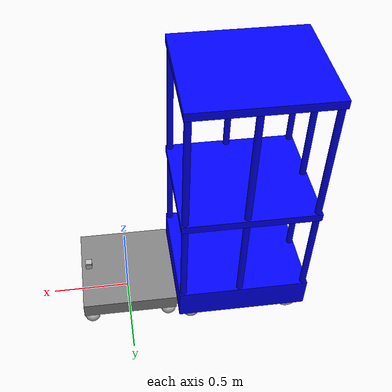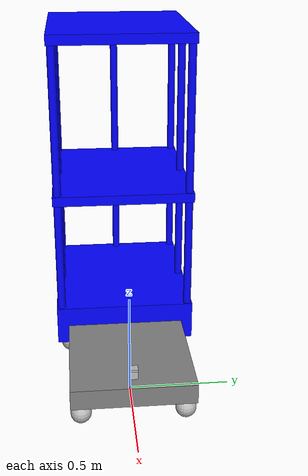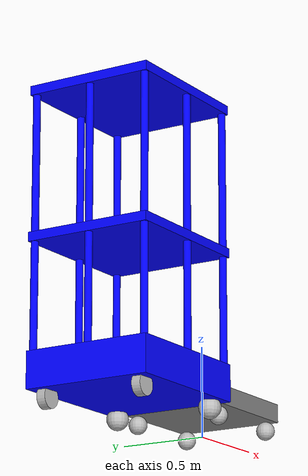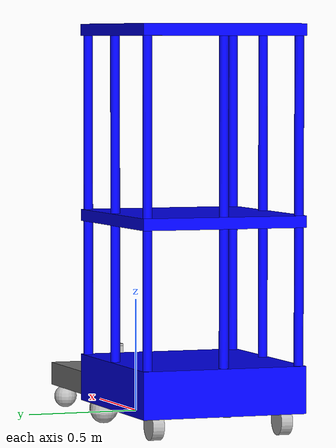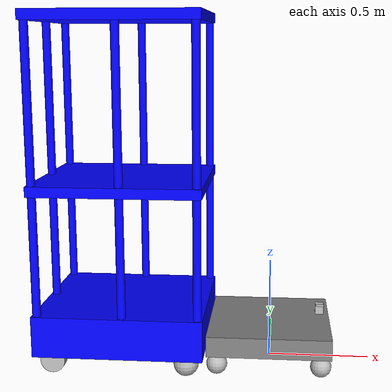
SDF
<?xml version='1.0'?>
<sdf version='1.5'>

  <model name='ropod_mobidik'>

   <include>
      <uri>model://mobidik</uri>
      <pose>-1.045 0 0 0 0 0</pose>
    </include>

   <include>
      <uri>model://ropod</uri>
    </include>

    <joint name="ropod_mobidik_joint" type="fixed">
      <child>ropod::base_link</child>
      <parent>mobidik::base_link</parent>
    </joint>

  </model>

  </sdf>

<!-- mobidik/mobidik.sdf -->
<sdf version='1.5'>

  <model name='mobidik'>

   <link name='base_link'>

      <inertial>
        <mass>4*50.0</mass>
        <inertia> <!-- inertias are tricky to compute -->
          <!-- http://gazebosim.org/tutorials?tut=inertia&cat=build_robot -->
          <ixx>0.083*4*50.0*1.01</ixx>       <!-- for a box: ixx = 0.083 * mass * (y*y + z*z) -->
          <ixy>0.0</ixy>         <!-- for a box: ixy = 0 -->
          <ixz>0.0</ixz>         <!-- for a box: ixz = 0 -->
          <iyy>0.083*4*50.0*1.01</iyy>       <!-- for a box: iyy = 0.083 * mass * (x*x + z*z) -->
          <iyz>0.0</iyz>         <!-- for a box: iyz = 0 -->
          <izz>0.083*4*50.0*2</izz>       <!-- for a box: izz = 0.083 * mass * (x*x + y*y) -->
        </inertia>
      </inertial>

      <collision name='base_link_collision'>
        <pose>0.325 0 0.195 0 0 0</pose>
        <geometry>
          <box>
            <size>0.82 0.72 0.2</size>
          </box>
        </geometry>
      </collision>
      <visual name='base_link_visual'>
		<pose>0.325 0 0.195 0 0 0</pose>
        <geometry>
          <box>
            <size>0.82 0.72 0.2</size>
          </box>
        </geometry>
	     <material>
			<ambient>0 0 1 1</ambient>
			<diffuse>0 0 1 1</diffuse>
			<specular>0.1 0.1 0.1 1</specular>
			<emissive>0 0 0 0</emissive>
		</material>
      </visual>

<!-- ********************** Bars ***************************** -->

      <visual name='base_barv1_visual'>
        <pose>-0.06 0.335 0.95 0 0 0</pose>
          <geometry>
            <cylinder>
              <radius>.02</radius>
              <length>1.5</length>
            </cylinder>
          </geometry>
	     <material>
			<ambient>0 0 1 1</ambient>
			<diffuse>0 0 1 1</diffuse>
			<specular>0.1 0.1 0.1 1</specular>
			<emissive>0 0 0 0</emissive>
		</material>
      </visual>

      <visual name='base_barv2_visual'>
        <pose>-0.06 -0.335 0.95 0 0 0</pose>
          <geometry>
            <cylinder>
              <radius>.02</radius>
              <length>1.5</length>
            </cylinder>
          </geometry>
	     <material>
			<ambient>0 0 1 1</ambient>
			<diffuse>0 0 1 1</diffuse>
			<specular>0.1 0.1 0.1 1</specular>
			<emissive>0 0 0 0</emissive>
		</material>
      </visual>

      <visual name='base_barv1_2_visual'>
        <pose>-0.06 0.0 0.95 0 0 0</pose>
          <geometry>
            <cylinder>
              <radius>.02</radius>
              <length>1.5</length>
            </cylinder>
          </geometry>
	     <material>
			<ambient>0 0 1 1</ambient>
			<diffuse>0 0 1 1</diffuse>
			<specular>0.1 0.1 0.1 1</specular>
			<emissive>0 0 0 0</emissive>
		</material>
      </visual>

      <visual name='base_barv3_visual'>
        <pose>0.71 0.335 0.95 0 0 0</pose>
          <geometry>
            <cylinder>
              <radius>.02</radius>
              <length>1.5</length>
            </cylinder>
          </geometry>
	     <material>
			<ambient>0 0 1 1</ambient>
			<diffuse>0 0 1 1</diffuse>
			<specular>0.1 0.1 0.1 1</specular>
			<emissive>0 0 0 0</emissive>
		</material>
      </visual>

      <visual name='base_barv4_visual'>
        <pose>0.71 -0.335 0.95 0 0 0</pose>
          <geometry>
            <cylinder>
              <radius>.02</radius>
              <length>1.5</length>
            </cylinder>
          </geometry>
	     <material>
			<ambient>0 0 1 1</ambient>
			<diffuse>0 0 1 1</diffuse>
			<specular>0.1 0.1 0.1 1</specular>
			<emissive>0 0 0 0</emissive>
		</material>
      </visual>

      <visual name='base_barv2_4_visual'>
        <pose>0.35 -0.335 0.95 0 0 0</pose>
          <geometry>
            <cylinder>
              <radius>.02</radius>
              <length>1.5</length>
            </cylinder>
          </geometry>
	     <material>
			<ambient>0 0 1 1</ambient>
			<diffuse>0 0 1 1</diffuse>
			<specular>0.1 0.1 0.1 1</specular>
			<emissive>0 0 0 0</emissive>
		</material>
      </visual>

      <visual name='base_barv1_4_visual'>
        <pose>0.35 0.335 0.95 0 0 0</pose>
          <geometry>
            <cylinder>
              <radius>.02</radius>
              <length>1.5</length>
            </cylinder>
          </geometry>
	     <material>
			<ambient>0 0 1 1</ambient>
			<diffuse>0 0 1 1</diffuse>
			<specular>0.1 0.1 0.1 1</specular>
			<emissive>0 0 0 0</emissive>
		</material>
      </visual>

<!-- ********************** trays ***************************** -->
      <visual name='tray1_visual'>
		<pose>0.325 0 0.9 0 0 0</pose>
        <geometry>
          <box>
            <size>0.82 0.72 0.05</size>
          </box>
        </geometry>
	     <material>
			<ambient>0 0 1 1</ambient>
			<diffuse>0 0 1 1</diffuse>
			<specular>0.1 0.1 0.1 1</specular>
			<emissive>0 0 0 0</emissive>
		</material>
      </visual>
      <visual name='tray2_visual'>
		<pose>0.325 0 1.7 0 0 0</pose>
        <geometry>
          <box>
            <size>0.82 0.72 0.05</size>
          </box>
        </geometry>
	     <material>
			<ambient>0 0 1 1</ambient>
			<diffuse>0 0 1 1</diffuse>
			<specular>0.1 0.1 0.1 1</specular>
			<emissive>0 0 0 0</emissive>
		</material>
      </visual>

<!-- ********************** Casters ***************************** -->

		<collision name='caster_top_left_collision'>
            <pose>0.65 0.285 0.06 0 0 0</pose>
            <geometry>
                <sphere>
                <radius>.06</radius>
              </sphere>
            </geometry>

            <surface>
              <friction>
                <ode>
                  <mu>0</mu>
                  <mu2>0</mu2>
                  <slip1>1.0</slip1>
                  <slip2>1.0</slip2>
                </ode>
              </friction>
            </surface>
          </collision>

          <visual name='caster_top_left_visual'>
			<pose>0.65 0.285 0.06 0 0 0</pose>
            <geometry>
                <sphere>
                <radius>.06</radius>
              </sphere>
            </geometry>

          </visual>

		<collision name='caster_top_right_collision'>
            <pose>0.65 -0.285 0.06 0 0 0</pose>
            <geometry>
                <sphere>
                <radius>.06</radius>
              </sphere>
            </geometry>

            <surface>
              <friction>
                <ode>
                  <mu>0</mu>
                  <mu2>0</mu2>
                  <slip1>1.0</slip1>
                  <slip2>1.0</slip2>
                </ode>
              </friction>
            </surface>
          </collision>

          <visual name='caster_top_right_visual'>
			<pose>0.65 -0.285 0.06 0 0 0</pose>
            <geometry>
                <sphere>
                <radius>.06</radius>
              </sphere>
            </geometry>

          </visual>

     <gravity>1</gravity>
      <self_collide>0</self_collide>

      </link>

<!-- ********************** Wheels ***************************** -->
      <link name="left_rear_wheel">
        <pose>0 0.285 0.06 0 1.5707 1.5707</pose>
        <collision name="collision">
          <geometry>
            <cylinder>
              <radius>.06</radius>
              <length>.05</length>
            </cylinder>
          </geometry>
	  <surface>
	  <friction>
	    <ode>
              <mu>0.0</mu>
              <mu2>0.0</mu2>
              <slip1>1.0</slip1>
              <slip2>1.0</slip2>
	    </ode>
	  </friction>
	  <contact>
	    <ode><min_depth>0.003</min_depth></ode>
	  </contact>
	</surface>
        </collision>
        <visual name="visual">
          <geometry>
            <cylinder>
              <radius>.06</radius>
              <length>.05</length>
            </cylinder>
          </geometry>
        </visual>
      </link>

      <link name="right_rear_wheel">
        <pose>0 -0.285 0.06 0 1.5707 1.5707</pose>
        <collision name="collision">
          <geometry>
            <cylinder>
              <radius>.06</radius>
              <length>.05</length>
            </cylinder>
          </geometry>
	  <surface>
	    <friction>
	      <ode>
              <mu>0.0</mu>
              <mu2>0.0</mu2>
              <slip1>1.0</slip1>
              <slip2>1.0</slip2>
	      </ode>
	    </friction>
	    <contact>
	      <ode><min_depth>0.003</min_depth></ode>
	    </contact>
	  </surface>
        </collision>
        <visual name="visual">
          <geometry>
            <cylinder>
              <radius>.06</radius>
              <length>.05</length>
            </cylinder>
          </geometry>
        </visual>
      </link>

       <joint type="revolute" name="left_wheel_hinge">
        <pose>0 0 -0.085 0 0 0</pose>
        <child>left_rear_wheel</child>
        <parent>base_link</parent>
        <axis>
          <xyz>0 0 1</xyz>
        </axis>
      </joint>

      <joint type="revolute" name="right_wheel_hinge">
        <pose>0 0 -0.085 0 0 0</pose>
        <child>right_rear_wheel</child>
        <parent>base_link</parent>
        <axis>
          <xyz>0 0 1</xyz>
        </axis>
      </joint>

<!-- ********************** Other parameters ***************************** -->

   <plugin name="Odometry_Plugin" filename="libOdometry_Plugin.so">
       <updateRate>30.0</updateRate>
       <veltopicName>/load/cmd_vel</veltopicName>
       <odomtopicName>/load/odom_incomplete</odomtopicName>
       <robotBaseFrame>/load/base_link</robotBaseFrame>
       <odomFrame>/load/odom</odomFrame>
   </plugin>

  </model>

  </sdf>

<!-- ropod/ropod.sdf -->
<sdf version='1.5'>

  <model name='ropod'>

   <link name='base_link'>

      <inertial>
        <mass>0.01</mass>
        <inertia> <!-- inertias are tricky to compute -->
          <!-- http://gazebosim.org/tutorials?tut=inertia&cat=build_robot -->
          <ixx>0.083*00.0*1.01</ixx>       <!-- for a box: ixx = 0.083 * mass * (y*y + z*z) -->
          <ixy>0.0</ixy>         <!-- for a box: ixy = 0 -->
          <ixz>0.0</ixz>         <!-- for a box: ixz = 0 -->
          <iyy>0.083*00.01*1.01</iyy>       <!-- for a box: iyy = 0.083 * mass * (x*x + z*z) -->
          <iyz>0.0</iyz>         <!-- for a box: iyz = 0 -->
          <izz>0.083*00.01*2</izz>       <!-- for a box: izz = 0.083 * mass * (x*x + y*y) -->
        </inertia>
      </inertial>

      <collision name='base_link_collision'>
        <pose>0 0 0.15 0 0 0</pose>
        <geometry>
          <box>
            <size>0.6 0.6 0.1</size>
          </box>
        </geometry>
      </collision>
      <visual name='base_link_visual'>
        <pose>0 0 0.15 0 0 0</pose>
        <geometry>
          <box>
            <size>0.6 0.6 0.1</size>
          </box>
        </geometry>
	<material>
		<ambient>0.5 0.5 0.5 1</ambient>
		<diffuse>0.5 0.5 0.5 1</diffuse>
		<specular>0.1 0.1 0.1 1</specular>
		<emissive>0 0 0 0</emissive>
	</material>
      </visual>

      <collision name='base_link_collision_left_rear_wheel'>
        <pose>-0.25 0.25 0.05 0 -0 0</pose>
        <geometry>
          <sphere>
            <radius>0.05</radius>
          </sphere>
        </geometry>
        <surface>
          <contact>
            <ode>
              <kp>1e+09</kp>
              <kd>1</kd>
            </ode>
          </contact>
          <friction>
            <ode>
              <mu>5</mu>
              <mu2>5</mu2>
            </ode>
          </friction>
        </surface>
      </collision>
      <visual name='base_link_visual_left_rear_wheel'>
         <pose>-0.25 0.25 0.05 0 -0 0</pose>
        <geometry>
          <sphere>
            <radius>0.05</radius>
          </sphere>
        </geometry>
      </visual>

      <collision name='base_link_collision_left_top_wheel'>
        <pose>0.25 0.25 0.05 0 -0 0</pose>
        <geometry>
          <sphere>
            <radius>0.05</radius>
          </sphere>
        </geometry>
        <surface>
          <contact>
            <ode>
              <kp>1e+09</kp>
              <kd>1</kd>
            </ode>
          </contact>
          <friction>
            <ode>
              <mu>5</mu>
              <mu2>5</mu2>
            </ode>
          </friction>
        </surface>
      </collision>
      <visual name='base_link_visual_left_top_wheel'>
         <pose>0.25 0.25 0.05 0 -0 0</pose>
        <geometry>
          <sphere>
            <radius>0.05</radius>
          </sphere>
        </geometry>
      </visual>

      <collision name='base_link_collision_right_top_wheel'>
        <pose>0.25 -0.25 0.05 0 -0 0</pose>
        <geometry>
          <sphere>
            <radius>0.05</radius>
          </sphere>
        </geometry>
        <surface>
          <contact>
            <ode>
              <kp>1e+09</kp>
              <kd>1</kd>
            </ode>
          </contact>
          <friction>
            <ode>
              <mu>5</mu>
              <mu2>5</mu2>
            </ode>
          </friction>
        </surface>
      </collision>
      <visual name='base_link_visual_right_top_wheel'>
         <pose>0.25 -0.25 0.05 0 -0 0</pose>
        <geometry>
          <sphere>
            <radius>0.05</radius>
          </sphere>
        </geometry>
      </visual>

      <collision name='base_link_collision_right_rear_wheel'>
        <pose>-0.25 -0.25 0.05 0 -0 0</pose>
        <geometry>
          <sphere>
            <radius>0.05</radius>
          </sphere>
        </geometry>
        <surface>
          <contact>
            <ode>
              <kp>1e+09</kp>
              <kd>1</kd>
            </ode>
          </contact>
          <friction>
            <ode>
              <mu>5</mu>
              <mu2>5</mu2>
            </ode>
          </friction>
        </surface>
      </collision>
      <visual name='base_link_visual_right_rear_wheel'>
         <pose>-0.25 -0.25 0.05 0 -0 0</pose>
        <geometry>
          <sphere>
            <radius>0.05</radius>
          </sphere>
        </geometry>
      </visual>

<!-- ********************** laser ***************************** -->

      <visual name='base_link_visual_laser'>
        <pose>0.25 0 0.25 0 -0 0</pose>
        <geometry>
          <box>
            <size>0.04 0.04 0.04</size>
          </box>
        </geometry>
      </visual>
      <visual name='base_link_visual_lasertop'>
        <pose>0.25 0 0.275 0 -0 0</pose>
        <geometry>
          <box>
            <size>0.04 0.04 0.01</size>
          </box>
        </geometry>
      </visual>

      <sensor name='laser' type='ray'>
	 <pose>0.25 0 0.25 0 0 0</pose>
        <ray>
          <scan>
            <horizontal>
              <samples>500</samples>
              <resolution>1</resolution>
              <min_angle>-2.35</min_angle>
              <max_angle>2.35</max_angle>
            </horizontal>
            <vertical>
              <samples>1</samples>
              <resolution>1</resolution>
              <min_angle>0</min_angle>
              <max_angle>0</max_angle>
            </vertical>
          </scan>
          <range>
            <min>0.01</min>
            <max>15</max>
            <resolution>0.01</resolution>
          </range>
        </ray>

      <plugin name="gazebo_ros_laser" filename="libgazebo_ros_laser.so">
        <topicName>/ropod/laser_sim</topicName>
         <frameName>/ropod/laser/scan</frameName>
        <robotNamespace></robotNamespace>
        <gaussianNoise>0.01</gaussianNoise>
        <always_on>1</always_on>
        <updateRate>30.0</updateRate>
      </plugin>
      <visualize>1</visualize>

    </sensor>

<!-- ********************** Other parameters ***************************** -->
      <gravity>1</gravity>
      <velocity_decay>
        <linear>0</linear>
        <angular>0</angular>
      </velocity_decay>
      <self_collide>0</self_collide>

   </link>

   <plugin name="Odometry_Plugin" filename="libOdometry_Plugin.so">
       <updateRate>30.0</updateRate>
       <veltopicName>/ropod/cmd_vel</veltopicName>
       <odomtopicName>/ropod/odom_incomplete</odomtopicName>
       <robotBaseFrame>/ropod/base_link</robotBaseFrame>
       <odomFrame>/ropod/odom</odomFrame>
   </plugin>

  </model>

  </sdf>
